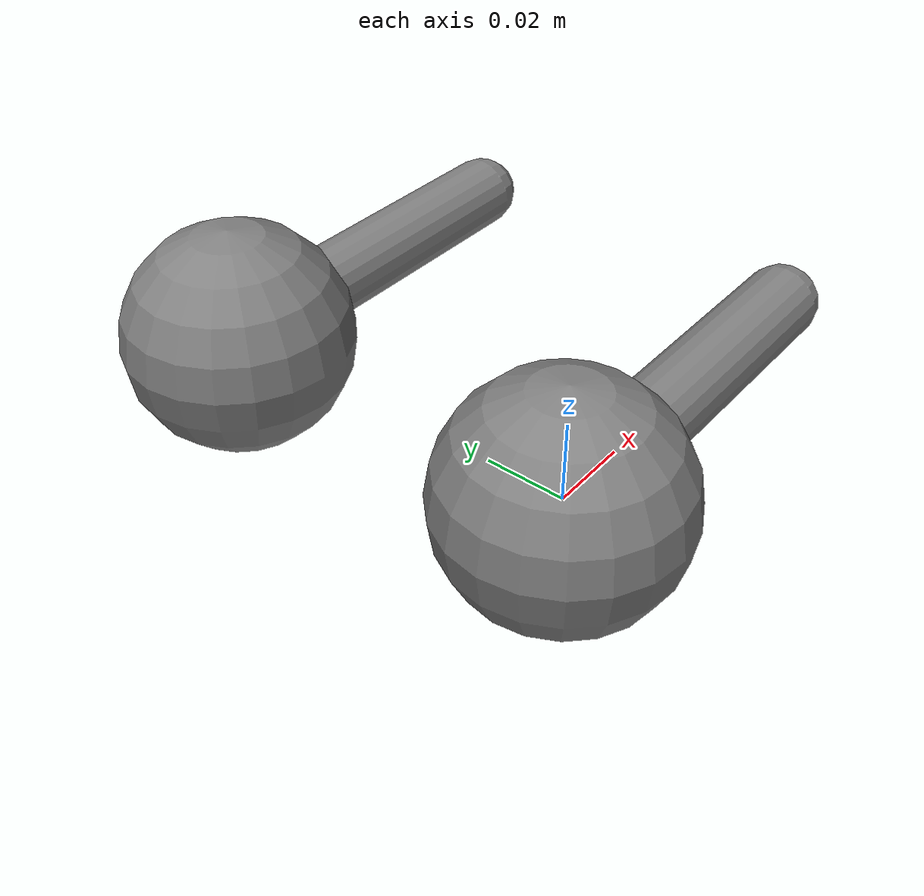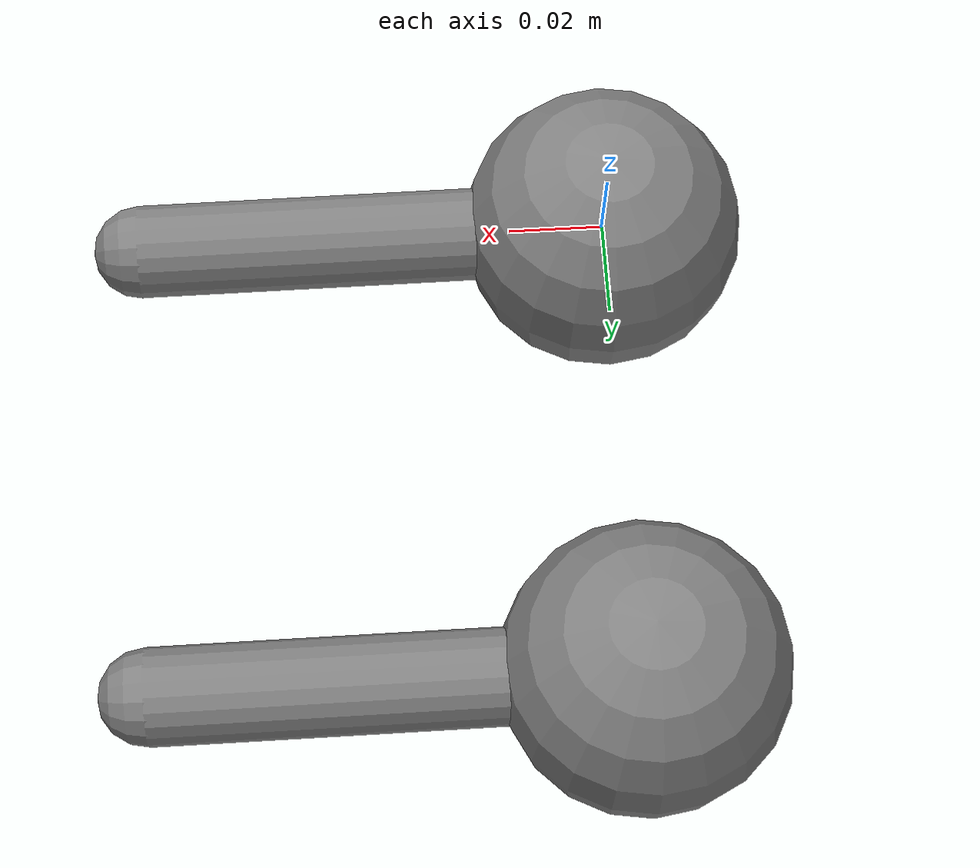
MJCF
<mujoco>
  <worldbody>
    <body name="damping in the joints">
      <joint type="slide" axis="0 0 1" damping="10"/>
      <geom size=".03"/>
      <body>
        <joint axis="0 1 0" damping=".1"/>
        <geom type="capsule" size=".01" fromto="0 0 0 .1 0 0"/>
      </body>
    </body>
    <body name="damping in the actuators" pos="0 0.1 0">
      <joint name="slide" type="slide" axis="0 0 1"/>
      <geom size=".03"/>
      <body>
        <joint name="hinge" axis="0 1 0"/>
        <geom type="capsule" size=".01" fromto="0 0 0 .1 0 0"/>
      </body>
    </body>
  </worldbody>
  <actuator>
    <general joint="slide" biastype="affine" biasprm="0 0 -10"/>
    <general joint="hinge" biastype="affine" biasprm="0 0 -0.1"/>
  </actuator>
</mujoco>
